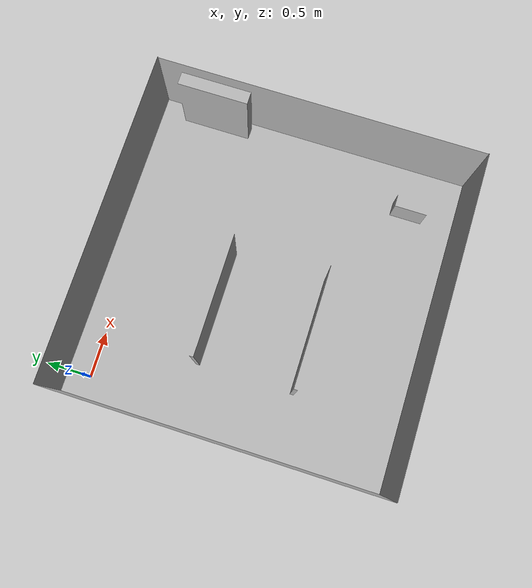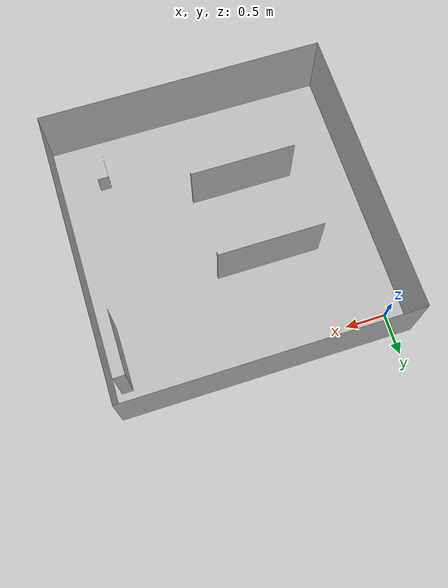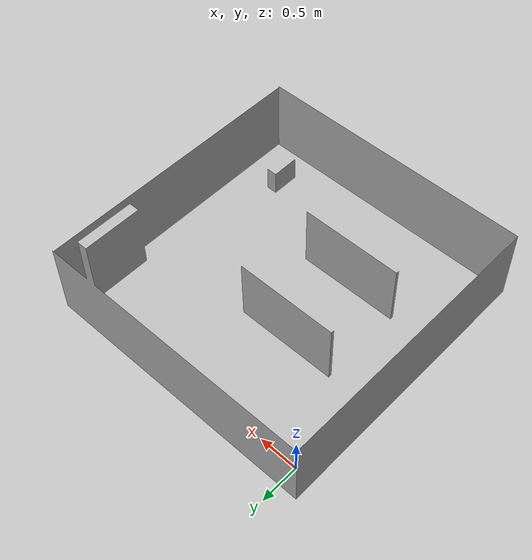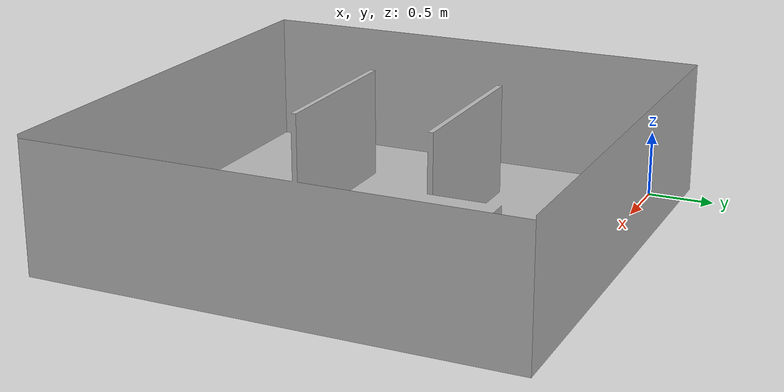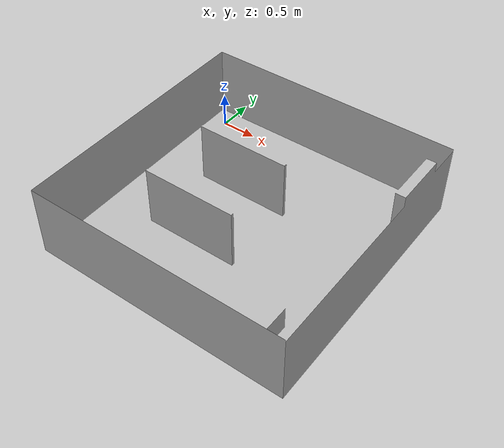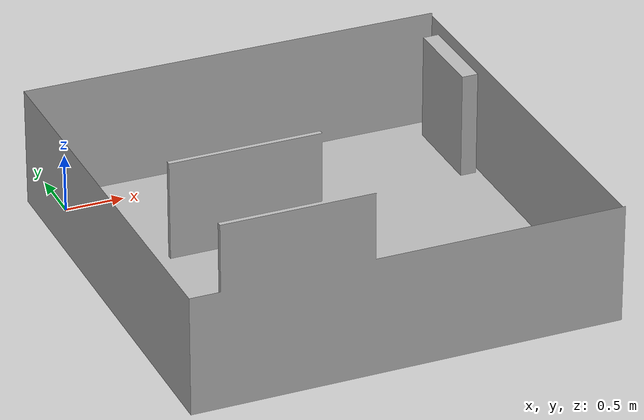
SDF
<sdf version="1.6">
 <world name="default">
  <light name="sun" type="directional">
   <pose>0 0 10 0 -0 0</pose>
   <diffuse>0.8 0.8 0.8 1</diffuse>
   <specular>0.2 0.2 0.2 1</specular>
   <attenuation>
    <range>1000</range>
    <constant>0.9</constant>
    <linear>0.01</linear>
    <quadratic>0.001</quadratic>
   </attenuation>
   <direction>-0.5 0.1 -0.9</direction>
  </light>
  <gravity>0 0 -9.8</gravity>
  <magnetic_field>6e-06 2.3e-05 -4.2e-05</magnetic_field>
  <atmosphere type="adiabatic"/>
  <physics name="default_physics" default="0" type="ode">
   <max_step_size>0.001</max_step_size>
   <real_time_factor>1</real_time_factor>
   <real_time_update_rate>1000</real_time_update_rate>
  </physics>
  <scene><ambient>0.4 0.4 0.4 1</ambient><background>0.7 0.7 0.7 1</background><shadows>1</shadows></scene>
  <audio><device>default</device></audio>
  <spherical_coordinates>
   <surface_model>EARTH_WGS84</surface_model>
   <latitude_deg>0</latitude_deg>
   <longitude_deg>0</longitude_deg>
   <elevation>0</elevation>
   <heading_deg>0</heading_deg>
  </spherical_coordinates>
  <model name="shoot3">
   <link name="link_0">
    <inertial>
     <mass>1</mass>
     <inertia>
      <ixx>0.166667</ixx>
      <ixy>0</ixy>
      <ixz>0</ixz>
      <iyy>0.166667</iyy>
      <iyz>0</iyz>
      <izz>0.166667</izz>
     </inertia>
    </inertial>
    <pose>1e-06 -2e-06 0 0 -0 0</pose>
    <visual name="visual">
     <geometry><mesh><uri>/home/l1ang/桌面/SHOOT3/shoot3/shoot3.dae</uri><scale>1 1 1</scale></mesh></geometry>
    </visual>
    <collision name="collision">
     <geometry><mesh><uri>/home/l1ang/桌面/SHOOT3/shoot3/shoot3.dae</uri><scale>1 1 1</scale></mesh></geometry>
     <surface>
      <friction>
       <ode><mu>1</mu><mu2>1</mu2><fdir1>0 0 0</fdir1><slip1>0</slip1><slip2>0</slip2></ode>
       <torsional>
        <coefficient>1</coefficient>
        <patch_radius>0</patch_radius>
        <surface_radius>0</surface_radius>
        <use_patch_radius>1</use_patch_radius>
        <ode><slip>0</slip></ode>
       </torsional>
      </friction>
      <bounce><restitution_coefficient>0</restitution_coefficient><threshold>1e+06</threshold></bounce>
      <contact>
       <collide_without_contact>0</collide_without_contact>
       <collide_without_contact_bitmask>1</collide_without_contact_bitmask>
       <collide_bitmask>1</collide_bitmask>
       <ode>
        <soft_cfm>0</soft_cfm>
        <soft_erp>0.2</soft_erp>
        <kp>1e+13</kp>
        <kd>1</kd>
        <max_vel>0.01</max_vel>
        <min_depth>0</min_depth>
       </ode>
       <bullet>
        <split_impulse>1</split_impulse>
        <split_impulse_penetration_threshold>-0.01</split_impulse_penetration_threshold>
        <soft_cfm>0</soft_cfm>
        <soft_erp>0.2</soft_erp>
        <kp>1e+13</kp>
        <kd>1</kd>
       </bullet>
      </contact>
     </surface>
    </collision>
   </link>
   <static>1</static>
   <pose>1.56165 -1.54395 -0 0 0 -1.5721</pose>
  </model>
  <light name="user_point_light_0" type="point">
   <pose>1.18467 -0.460886 1 0 -0 0</pose>
   <diffuse>0.5 0.5 0.5 1</diffuse>
   <specular>0.1 0.1 0.1 1</specular>
   <attenuation>
    <range>20</range>
    <constant>0.5</constant>
    <linear>0.01</linear>
    <quadratic>0.001</quadratic>
   </attenuation>
   <cast_shadows>0</cast_shadows>
   <direction>0 0 -1</direction>
  </light>
  <light name="user_point_light_1" type="point">
   <pose>1.21476 -1.50684 1 0 -0 0</pose>
   <diffuse>0.5 0.5 0.5 1</diffuse>
   <specular>0.1 0.1 0.1 1</specular>
   <attenuation>
    <range>20</range>
    <constant>0.5</constant>
    <linear>0.01</linear>
    <quadratic>0.001</quadratic>
   </attenuation>
   <cast_shadows>0</cast_shadows>
   <direction>0 0 -1</direction>
  </light>
 </world>
</sdf>
